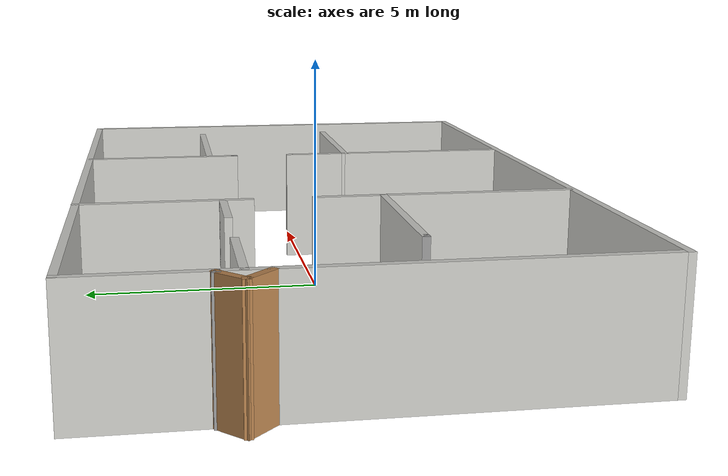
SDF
<?xml version='1.0'?>
<sdf version='1.7'>
  <model name='School'>
    <link name='Wall_17'>
      <pose>0.254991 -4.96898 0 0 -0 0</pose>
      <self_collide>0</self_collide>
      <enable_wind>0</enable_wind>
      <kinematic>0</kinematic>
      <visual name='Wall_17_Visual'>
        <pose>0 0 1.25 0 -0 0</pose>
        <geometry>
          <box>
            <size>15 0.15 2.5</size>
          </box>
        </geometry>
        <material>
          <script>
            <uri>file://media/materials/scripts/gazebo.material</uri>
            <name>Gazebo/CeilingTiled</name>
          </script>
          <ambient>1 1 1 1</ambient>
          <shader type='pixel'/>
        </material>
        <meta>
          <layer>0</layer>
        </meta>
        <transparency>0</transparency>
        <cast_shadows>1</cast_shadows>
      </visual>
      <collision name='Wall_17_Collision'>
        <laser_retro>0</laser_retro>
        <max_contacts>10</max_contacts>
        <pose>0 0 1.25 0 -0 0</pose>
        <geometry>
          <box>
            <size>15 0.15 2.5</size>
          </box>
        </geometry>
        <surface>
          <friction>
            <ode>
              <mu>1</mu>
              <mu2>1</mu2>
              <fdir1>0 0 0</fdir1>
              <slip1>0</slip1>
              <slip2>0</slip2>
            </ode>
            <torsional>
              <coefficient>1</coefficient>
              <patch_radius>0</patch_radius>
              <surface_radius>0</surface_radius>
              <use_patch_radius>1</use_patch_radius>
              <ode>
                <slip>0</slip>
              </ode>
            </torsional>
          </friction>
          <bounce>
            <restitution_coefficient>0</restitution_coefficient>
            <threshold>1e+06</threshold>
          </bounce>
          <contact>
            <collide_without_contact>0</collide_without_contact>
            <collide_without_contact_bitmask>1</collide_without_contact_bitmask>
            <collide_bitmask>1</collide_bitmask>
            <ode>
              <soft_cfm>0</soft_cfm>
              <soft_erp>0.2</soft_erp>
              <kp>1e+13</kp>
              <kd>1</kd>
              <max_vel>0.01</max_vel>
              <min_depth>0</min_depth>
            </ode>
            <bullet>
              <split_impulse>1</split_impulse>
              <split_impulse_penetration_threshold>-0.01</split_impulse_penetration_threshold>
              <soft_cfm>0</soft_cfm>
              <soft_erp>0.2</soft_erp>
              <kp>1e+13</kp>
              <kd>1</kd>
            </bullet>
          </contact>
        </surface>
      </collision>
    </link>
    <link name='Wall_19'>
      <pose>7.67999 -0.04398 0 0 -0 1.5708</pose>
      <self_collide>0</self_collide>
      <enable_wind>0</enable_wind>
      <kinematic>0</kinematic>
      <visual name='Wall_19_Visual'>
        <pose>0 0 1.25 0 -0 0</pose>
        <geometry>
          <box>
            <size>10 0.15 2.5</size>
          </box>
        </geometry>
        <material>
          <script>
            <uri>file://media/materials/scripts/gazebo.material</uri>
            <name>Gazebo/CeilingTiled</name>
          </script>
          <ambient>1 1 1 1</ambient>
          <shader type='pixel'/>
        </material>
        <meta>
          <layer>0</layer>
        </meta>
        <transparency>0</transparency>
        <cast_shadows>1</cast_shadows>
      </visual>
      <collision name='Wall_19_Collision'>
        <laser_retro>0</laser_retro>
        <max_contacts>10</max_contacts>
        <pose>0 0 1.25 0 -0 0</pose>
        <geometry>
          <box>
            <size>10 0.15 2.5</size>
          </box>
        </geometry>
        <surface>
          <friction>
            <ode>
              <mu>1</mu>
              <mu2>1</mu2>
              <fdir1>0 0 0</fdir1>
              <slip1>0</slip1>
              <slip2>0</slip2>
            </ode>
            <torsional>
              <coefficient>1</coefficient>
              <patch_radius>0</patch_radius>
              <surface_radius>0</surface_radius>
              <use_patch_radius>1</use_patch_radius>
              <ode>
                <slip>0</slip>
              </ode>
            </torsional>
          </friction>
          <bounce>
            <restitution_coefficient>0</restitution_coefficient>
            <threshold>1e+06</threshold>
          </bounce>
          <contact>
            <collide_without_contact>0</collide_without_contact>
            <collide_without_contact_bitmask>1</collide_without_contact_bitmask>
            <collide_bitmask>1</collide_bitmask>
            <ode>
              <soft_cfm>0</soft_cfm>
              <soft_erp>0.2</soft_erp>
              <kp>1e+13</kp>
              <kd>1</kd>
              <max_vel>0.01</max_vel>
              <min_depth>0</min_depth>
            </ode>
            <bullet>
              <split_impulse>1</split_impulse>
              <split_impulse_penetration_threshold>-0.01</split_impulse_penetration_threshold>
              <soft_cfm>0</soft_cfm>
              <soft_erp>0.2</soft_erp>
              <kp>1e+13</kp>
              <kd>1</kd>
            </bullet>
          </contact>
        </surface>
      </collision>
    </link>
    <link name='Wall_21'>
      <pose>2.71343 -2.97254 0 0 -0 1.56975</pose>
      <self_collide>0</self_collide>
      <enable_wind>0</enable_wind>
      <kinematic>0</kinematic>
      <visual name='Wall_21_Visual'>
        <pose>0 0 1.25 0 -0 0</pose>
        <geometry>
          <box>
            <size>3.84171 0.15 2.5</size>
          </box>
        </geometry>
        <material>
          <script>
            <uri>file://media/materials/scripts/gazebo.material</uri>
            <name>Gazebo/CeilingTiled</name>
          </script>
          <ambient>1 1 1 1</ambient>
          <shader type='pixel'/>
        </material>
        <meta>
          <layer>0</layer>
        </meta>
        <transparency>0</transparency>
        <cast_shadows>1</cast_shadows>
      </visual>
      <collision name='Wall_21_Collision'>
        <laser_retro>0</laser_retro>
        <max_contacts>10</max_contacts>
        <pose>0 0 1.25 0 -0 0</pose>
        <geometry>
          <box>
            <size>3.84171 0.15 2.5</size>
          </box>
        </geometry>
        <surface>
          <friction>
            <ode>
              <mu>1</mu>
              <mu2>1</mu2>
              <fdir1>0 0 0</fdir1>
              <slip1>0</slip1>
              <slip2>0</slip2>
            </ode>
            <torsional>
              <coefficient>1</coefficient>
              <patch_radius>0</patch_radius>
              <surface_radius>0</surface_radius>
              <use_patch_radius>1</use_patch_radius>
              <ode>
                <slip>0</slip>
              </ode>
            </torsional>
          </friction>
          <bounce>
            <restitution_coefficient>0</restitution_coefficient>
            <threshold>1e+06</threshold>
          </bounce>
          <contact>
            <collide_without_contact>0</collide_without_contact>
            <collide_without_contact_bitmask>1</collide_without_contact_bitmask>
            <collide_bitmask>1</collide_bitmask>
            <ode>
              <soft_cfm>0</soft_cfm>
              <soft_erp>0.2</soft_erp>
              <kp>1e+13</kp>
              <kd>1</kd>
              <max_vel>0.01</max_vel>
              <min_depth>0</min_depth>
            </ode>
            <bullet>
              <split_impulse>1</split_impulse>
              <split_impulse_penetration_threshold>-0.01</split_impulse_penetration_threshold>
              <soft_cfm>0</soft_cfm>
              <soft_erp>0.2</soft_erp>
              <kp>1e+13</kp>
              <kd>1</kd>
            </bullet>
          </contact>
        </surface>
      </collision>
    </link>
    <link name='Wall_25'>
      <pose>-7.17001 -0.00448 0 0 -0 1.5708</pose>
      <self_collide>0</self_collide>
      <enable_wind>0</enable_wind>
      <kinematic>0</kinematic>
      <visual name='Wall_25_Visual'>
        <pose>0 0 1.25 0 -0 0</pose>
        <geometry>
          <box>
            <size>10.0791 0.15 2.5</size>
          </box>
        </geometry>
        <material>
          <script>
            <uri>file://media/materials/scripts/gazebo.material</uri>
            <name>Gazebo/CeilingTiled</name>
          </script>
          <ambient>1 1 1 1</ambient>
          <shader type='pixel'/>
        </material>
        <meta>
          <layer>0</layer>
        </meta>
        <transparency>0</transparency>
        <cast_shadows>1</cast_shadows>
      </visual>
      <collision name='Wall_25_Collision'>
        <laser_retro>0</laser_retro>
        <max_contacts>10</max_contacts>
        <pose>0 0 1.25 0 -0 0</pose>
        <geometry>
          <box>
            <size>10.0791 0.15 2.5</size>
          </box>
        </geometry>
        <surface>
          <friction>
            <ode>
              <mu>1</mu>
              <mu2>1</mu2>
              <fdir1>0 0 0</fdir1>
              <slip1>0</slip1>
              <slip2>0</slip2>
            </ode>
            <torsional>
              <coefficient>1</coefficient>
              <patch_radius>0</patch_radius>
              <surface_radius>0</surface_radius>
              <use_patch_radius>1</use_patch_radius>
              <ode>
                <slip>0</slip>
              </ode>
            </torsional>
          </friction>
          <bounce>
            <restitution_coefficient>0</restitution_coefficient>
            <threshold>1e+06</threshold>
          </bounce>
          <contact>
            <collide_without_contact>0</collide_without_contact>
            <collide_without_contact_bitmask>1</collide_without_contact_bitmask>
            <collide_bitmask>1</collide_bitmask>
            <ode>
              <soft_cfm>0</soft_cfm>
              <soft_erp>0.2</soft_erp>
              <kp>1e+13</kp>
              <kd>1</kd>
              <max_vel>0.01</max_vel>
              <min_depth>0</min_depth>
            </ode>
            <bullet>
              <split_impulse>1</split_impulse>
              <split_impulse_penetration_threshold>-0.01</split_impulse_penetration_threshold>
              <soft_cfm>0</soft_cfm>
              <soft_erp>0.2</soft_erp>
              <kp>1e+13</kp>
              <kd>1</kd>
            </bullet>
          </contact>
        </surface>
      </collision>
    </link>
    <link name='Wall_27'>
      <pose>-2.23801 -2.96498 0 0 -0 1.5708</pose>
      <self_collide>0</self_collide>
      <enable_wind>0</enable_wind>
      <kinematic>0</kinematic>
      <visual name='Wall_27_Visual'>
        <pose>0 0 1.25 0 -0 0</pose>
        <geometry>
          <box>
            <size>4 0.15 2.5</size>
          </box>
        </geometry>
        <material>
          <script>
            <uri>file://media/materials/scripts/gazebo.material</uri>
            <name>Gazebo/CeilingTiled</name>
          </script>
          <ambient>1 1 1 1</ambient>
          <shader type='pixel'/>
        </material>
        <meta>
          <layer>0</layer>
        </meta>
        <transparency>0</transparency>
        <cast_shadows>1</cast_shadows>
      </visual>
      <collision name='Wall_27_Collision'>
        <laser_retro>0</laser_retro>
        <max_contacts>10</max_contacts>
        <pose>0 0 1.25 0 -0 0</pose>
        <geometry>
          <box>
            <size>4 0.15 2.5</size>
          </box>
        </geometry>
        <surface>
          <friction>
            <ode>
              <mu>1</mu>
              <mu2>1</mu2>
              <fdir1>0 0 0</fdir1>
              <slip1>0</slip1>
              <slip2>0</slip2>
            </ode>
            <torsional>
              <coefficient>1</coefficient>
              <patch_radius>0</patch_radius>
              <surface_radius>0</surface_radius>
              <use_patch_radius>1</use_patch_radius>
              <ode>
                <slip>0</slip>
              </ode>
            </torsional>
          </friction>
          <bounce>
            <restitution_coefficient>0</restitution_coefficient>
            <threshold>1e+06</threshold>
          </bounce>
          <contact>
            <collide_without_contact>0</collide_without_contact>
            <collide_without_contact_bitmask>1</collide_without_contact_bitmask>
            <collide_bitmask>1</collide_bitmask>
            <ode>
              <soft_cfm>0</soft_cfm>
              <soft_erp>0.2</soft_erp>
              <kp>1e+13</kp>
              <kd>1</kd>
              <max_vel>0.01</max_vel>
              <min_depth>0</min_depth>
            </ode>
            <bullet>
              <split_impulse>1</split_impulse>
              <split_impulse_penetration_threshold>-0.01</split_impulse_penetration_threshold>
              <soft_cfm>0</soft_cfm>
              <soft_erp>0.2</soft_erp>
              <kp>1e+13</kp>
              <kd>1</kd>
            </bullet>
          </contact>
        </surface>
      </collision>
    </link>
    <link name='Wall_29'>
      <pose>-3.91301 -1.03998 0 0 -0 3.14159</pose>
      <self_collide>0</self_collide>
      <enable_wind>0</enable_wind>
      <kinematic>0</kinematic>
      <visual name='Wall_29_Visual'>
        <pose>0 0 1.25 0 -0 0</pose>
        <geometry>
          <box>
            <size>3.5 0.15 2.5</size>
          </box>
        </geometry>
        <material>
          <script>
            <uri>file://media/materials/scripts/gazebo.material</uri>
            <name>Gazebo/CeilingTiled</name>
          </script>
          <ambient>1 1 1 1</ambient>
          <shader type='pixel'/>
        </material>
        <meta>
          <layer>0</layer>
        </meta>
        <transparency>0</transparency>
        <cast_shadows>1</cast_shadows>
      </visual>
      <collision name='Wall_29_Collision'>
        <laser_retro>0</laser_retro>
        <max_contacts>10</max_contacts>
        <pose>0 0 1.25 0 -0 0</pose>
        <geometry>
          <box>
            <size>3.5 0.15 2.5</size>
          </box>
        </geometry>
        <surface>
          <friction>
            <ode>
              <mu>1</mu>
              <mu2>1</mu2>
              <fdir1>0 0 0</fdir1>
              <slip1>0</slip1>
              <slip2>0</slip2>
            </ode>
            <torsional>
              <coefficient>1</coefficient>
              <patch_radius>0</patch_radius>
              <surface_radius>0</surface_radius>
              <use_patch_radius>1</use_patch_radius>
              <ode>
                <slip>0</slip>
              </ode>
            </torsional>
          </friction>
          <bounce>
            <restitution_coefficient>0</restitution_coefficient>
            <threshold>1e+06</threshold>
          </bounce>
          <contact>
            <collide_without_contact>0</collide_without_contact>
            <collide_without_contact_bitmask>1</collide_without_contact_bitmask>
            <collide_bitmask>1</collide_bitmask>
            <ode>
              <soft_cfm>0</soft_cfm>
              <soft_erp>0.2</soft_erp>
              <kp>1e+13</kp>
              <kd>1</kd>
              <max_vel>0.01</max_vel>
              <min_depth>0</min_depth>
            </ode>
            <bullet>
              <split_impulse>1</split_impulse>
              <split_impulse_penetration_threshold>-0.01</split_impulse_penetration_threshold>
              <soft_cfm>0</soft_cfm>
              <soft_erp>0.2</soft_erp>
              <kp>1e+13</kp>
              <kd>1</kd>
            </bullet>
          </contact>
        </surface>
      </collision>
    </link>
    <link name='Wall_30'>
      <pose>-5.58301 -1.03998 0 0 -0 0</pose>
      <self_collide>0</self_collide>
      <enable_wind>0</enable_wind>
      <kinematic>0</kinematic>
      <visual name='Wall_30_Visual'>
        <pose>0 0 1.25 0 -0 0</pose>
        <geometry>
          <box>
            <size>0.16 0.15 2.5</size>
          </box>
        </geometry>
        <material>
          <script>
            <uri>file://media/materials/scripts/gazebo.material</uri>
            <name>Gazebo/Grey</name>
          </script>
          <ambient>1 1 1 1</ambient>
          <shader type='pixel'/>
        </material>
        <meta>
          <layer>0</layer>
        </meta>
        <transparency>0</transparency>
        <cast_shadows>1</cast_shadows>
      </visual>
      <collision name='Wall_30_Collision'>
        <laser_retro>0</laser_retro>
        <max_contacts>10</max_contacts>
        <pose>0 0 1.25 0 -0 0</pose>
        <geometry>
          <box>
            <size>0.16 0.15 2.5</size>
          </box>
        </geometry>
        <surface>
          <friction>
            <ode>
              <mu>1</mu>
              <mu2>1</mu2>
              <fdir1>0 0 0</fdir1>
              <slip1>0</slip1>
              <slip2>0</slip2>
            </ode>
            <torsional>
              <coefficient>1</coefficient>
              <patch_radius>0</patch_radius>
              <surface_radius>0</surface_radius>
              <use_patch_radius>1</use_patch_radius>
              <ode>
                <slip>0</slip>
              </ode>
            </torsional>
          </friction>
          <bounce>
            <restitution_coefficient>0</restitution_coefficient>
            <threshold>1e+06</threshold>
          </bounce>
          <contact>
            <collide_without_contact>0</collide_without_contact>
            <collide_without_contact_bitmask>1</collide_without_contact_bitmask>
            <collide_bitmask>1</collide_bitmask>
            <ode>
              <soft_cfm>0</soft_cfm>
              <soft_erp>0.2</soft_erp>
              <kp>1e+13</kp>
              <kd>1</kd>
              <max_vel>0.01</max_vel>
              <min_depth>0</min_depth>
            </ode>
            <bullet>
              <split_impulse>1</split_impulse>
              <split_impulse_penetration_threshold>-0.01</split_impulse_penetration_threshold>
              <soft_cfm>0</soft_cfm>
              <soft_erp>0.2</soft_erp>
              <kp>1e+13</kp>
              <kd>1</kd>
            </bullet>
          </contact>
        </surface>
      </collision>
    </link>
    <link name='Wall_32'>
      <pose>4.42767 -1.12668 0 0 -0 0</pose>
      <self_collide>0</self_collide>
      <enable_wind>0</enable_wind>
      <kinematic>0</kinematic>
      <visual name='Wall_32_Visual'>
        <pose>0 0 1.25 0 -0 0</pose>
        <geometry>
          <box>
            <size>3.57462 0.15 2.5</size>
          </box>
        </geometry>
        <material>
          <script>
            <uri>file://media/materials/scripts/gazebo.material</uri>
            <name>Gazebo/CeilingTiled</name>
          </script>
          <ambient>1 1 1 1</ambient>
          <shader type='pixel'/>
        </material>
        <meta>
          <layer>0</layer>
        </meta>
        <transparency>0</transparency>
        <cast_shadows>1</cast_shadows>
      </visual>
      <collision name='Wall_32_Collision'>
        <laser_retro>0</laser_retro>
        <max_contacts>10</max_contacts>
        <pose>0 0 1.25 0 -0 0</pose>
        <geometry>
          <box>
            <size>3.57462 0.15 2.5</size>
          </box>
        </geometry>
        <surface>
          <friction>
            <ode>
              <mu>1</mu>
              <mu2>1</mu2>
              <fdir1>0 0 0</fdir1>
              <slip1>0</slip1>
              <slip2>0</slip2>
            </ode>
            <torsional>
              <coefficient>1</coefficient>
              <patch_radius>0</patch_radius>
              <surface_radius>0</surface_radius>
              <use_patch_radius>1</use_patch_radius>
              <ode>
                <slip>0</slip>
              </ode>
            </torsional>
          </friction>
          <bounce>
            <restitution_coefficient>0</restitution_coefficient>
            <threshold>1e+06</threshold>
          </bounce>
          <contact>
            <collide_without_contact>0</collide_without_contact>
            <collide_without_contact_bitmask>1</collide_without_contact_bitmask>
            <collide_bitmask>1</collide_bitmask>
            <ode>
              <soft_cfm>0</soft_cfm>
              <soft_erp>0.2</soft_erp>
              <kp>1e+13</kp>
              <kd>1</kd>
              <max_vel>0.01</max_vel>
              <min_depth>0</min_depth>
            </ode>
            <bullet>
              <split_impulse>1</split_impulse>
              <split_impulse_penetration_threshold>-0.01</split_impulse_penetration_threshold>
              <soft_cfm>0</soft_cfm>
              <soft_erp>0.2</soft_erp>
              <kp>1e+13</kp>
              <kd>1</kd>
            </bullet>
          </contact>
        </surface>
      </collision>
    </link>
    <link name='Wall_36'>
      <pose>0.254991 4.95997 0 0 0 -7e-06</pose>
      <self_collide>0</self_collide>
      <enable_wind>0</enable_wind>
      <kinematic>0</kinematic>
      <visual name='Wall_36_Visual'>
        <pose>0 0 1.25 0 -0 0</pose>
        <geometry>
          <box>
            <size>15 0.15 2.5</size>
          </box>
        </geometry>
        <material>
          <script>
            <uri>file://media/materials/scripts/gazebo.material</uri>
            <name>Gazebo/CeilingTiled</name>
          </script>
          <ambient>1 1 1 1</ambient>
          <shader type='pixel'/>
        </material>
        <meta>
          <layer>0</layer>
        </meta>
        <transparency>0</transparency>
        <cast_shadows>1</cast_shadows>
      </visual>
      <collision name='Wall_36_Collision'>
        <laser_retro>0</laser_retro>
        <max_contacts>10</max_contacts>
        <pose>0 0 1.25 0 -0 0</pose>
        <geometry>
          <box>
            <size>15 0.15 2.5</size>
          </box>
        </geometry>
        <surface>
          <friction>
            <ode>
              <mu>1</mu>
              <mu2>1</mu2>
              <fdir1>0 0 0</fdir1>
              <slip1>0</slip1>
              <slip2>0</slip2>
            </ode>
            <torsional>
              <coefficient>1</coefficient>
              <patch_radius>0</patch_radius>
              <surface_radius>0</surface_radius>
              <use_patch_radius>1</use_patch_radius>
              <ode>
                <slip>0</slip>
              </ode>
            </torsional>
          </friction>
          <bounce>
            <restitution_coefficient>0</restitution_coefficient>
            <threshold>1e+06</threshold>
          </bounce>
          <contact>
            <collide_without_contact>0</collide_without_contact>
            <collide_without_contact_bitmask>1</collide_without_contact_bitmask>
            <collide_bitmask>1</collide_bitmask>
            <ode>
              <soft_cfm>0</soft_cfm>
              <soft_erp>0.2</soft_erp>
              <kp>1e+13</kp>
              <kd>1</kd>
              <max_vel>0.01</max_vel>
              <min_depth>0</min_depth>
            </ode>
            <bullet>
              <split_impulse>1</split_impulse>
              <split_impulse_penetration_threshold>-0.01</split_impulse_penetration_threshold>
              <soft_cfm>0</soft_cfm>
              <soft_erp>0.2</soft_erp>
              <kp>1e+13</kp>
              <kd>1</kd>
            </bullet>
          </contact>
        </surface>
      </collision>
    </link>
    <link name='Wall_39'>
      <pose>-2.23801 -0.36498 0 0 -0 1.5708</pose>
      <self_collide>0</self_collide>
      <enable_wind>0</enable_wind>
      <kinematic>0</kinematic>
      <visual name='Wall_39_Visual'>
        <pose>0 0 1.25 0 -0 0</pose>
        <geometry>
          <box>
            <size>1.5 0.15 2.5</size>
          </box>
        </geometry>
        <material>
          <script>
            <uri>file://media/materials/scripts/gazebo.material</uri>
            <name>Gazebo/CeilingTiled</name>
          </script>
          <ambient>1 1 1 1</ambient>
          <shader type='pixel'/>
        </material>
        <meta>
          <layer>0</layer>
        </meta>
        <transparency>0</transparency>
        <cast_shadows>1</cast_shadows>
      </visual>
      <collision name='Wall_39_Collision'>
        <laser_retro>0</laser_retro>
        <max_contacts>10</max_contacts>
        <pose>0 0 1.25 0 -0 0</pose>
        <geometry>
          <box>
            <size>1.5 0.15 2.5</size>
          </box>
        </geometry>
        <surface>
          <friction>
            <ode>
              <mu>1</mu>
              <mu2>1</mu2>
              <fdir1>0 0 0</fdir1>
              <slip1>0</slip1>
              <slip2>0</slip2>
            </ode>
            <torsional>
              <coefficient>1</coefficient>
              <patch_radius>0</patch_radius>
              <surface_radius>0</surface_radius>
              <use_patch_radius>1</use_patch_radius>
              <ode>
                <slip>0</slip>
              </ode>
            </torsional>
          </friction>
          <bounce>
            <restitution_coefficient>0</restitution_coefficient>
            <threshold>1e+06</threshold>
          </bounce>
          <contact>
            <collide_without_contact>0</collide_without_contact>
            <collide_without_contact_bitmask>1</collide_without_contact_bitmask>
            <collide_bitmask>1</collide_bitmask>
            <ode>
              <soft_cfm>0</soft_cfm>
              <soft_erp>0.2</soft_erp>
              <kp>1e+13</kp>
              <kd>1</kd>
              <max_vel>0.01</max_vel>
              <min_depth>0</min_depth>
            </ode>
            <bullet>
              <split_impulse>1</split_impulse>
              <split_impulse_penetration_threshold>-0.01</split_impulse_penetration_threshold>
              <soft_cfm>0</soft_cfm>
              <soft_erp>0.2</soft_erp>
              <kp>1e+13</kp>
              <kd>1</kd>
            </bullet>
          </contact>
        </surface>
      </collision>
    </link>
    <link name='Wall_41'>
      <pose>-2.23801 3.29402 0 0 0 -1.5708</pose>
      <self_collide>0</self_collide>
      <enable_wind>0</enable_wind>
      <kinematic>0</kinematic>
      <visual name='Wall_41_Visual'>
        <pose>0 0 1.25 0 -0 0</pose>
        <geometry>
          <box>
            <size>3.5 0.15 2.5</size>
          </box>
        </geometry>
        <material>
          <script>
            <uri>file://media/materials/scripts/gazebo.material</uri>
            <name>Gazebo/CeilingTiled</name>
          </script>
          <ambient>1 1 1 1</ambient>
          <shader type='pixel'/>
        </material>
        <meta>
          <layer>0</layer>
        </meta>
        <transparency>0</transparency>
        <cast_shadows>1</cast_shadows>
      </visual>
      <collision name='Wall_41_Collision'>
        <laser_retro>0</laser_retro>
        <max_contacts>10</max_contacts>
        <pose>0 0 1.25 0 -0 0</pose>
        <geometry>
          <box>
            <size>3.5 0.15 2.5</size>
          </box>
        </geometry>
        <surface>
          <friction>
            <ode>
              <mu>1</mu>
              <mu2>1</mu2>
              <fdir1>0 0 0</fdir1>
              <slip1>0</slip1>
              <slip2>0</slip2>
            </ode>
            <torsional>
              <coefficient>1</coefficient>
              <patch_radius>0</patch_radius>
              <surface_radius>0</surface_radius>
              <use_patch_radius>1</use_patch_radius>
              <ode>
                <slip>0</slip>
              </ode>
            </torsional>
          </friction>
          <bounce>
            <restitution_coefficient>0</restitution_coefficient>
            <threshold>1e+06</threshold>
          </bounce>
          <contact>
            <collide_without_contact>0</collide_without_contact>
            <collide_without_contact_bitmask>1</collide_without_contact_bitmask>
            <collide_bitmask>1</collide_bitmask>
            <ode>
              <soft_cfm>0</soft_cfm>
              <soft_erp>0.2</soft_erp>
              <kp>1e+13</kp>
              <kd>1</kd>
              <max_vel>0.01</max_vel>
              <min_depth>0</min_depth>
            </ode>
            <bullet>
              <split_impulse>1</split_impulse>
              <split_impulse_penetration_threshold>-0.01</split_impulse_penetration_threshold>
              <soft_cfm>0</soft_cfm>
              <soft_erp>0.2</soft_erp>
              <kp>1e+13</kp>
              <kd>1</kd>
            </bullet>
          </contact>
        </surface>
      </collision>
    </link>
    <link name='Wall_46'>
      <pose>2.73299 3.23402 0 0 0 -1.5708</pose>
      <self_collide>0</self_collide>
      <enable_wind>0</enable_wind>
      <kinematic>0</kinematic>
      <visual name='Wall_46_Visual'>
        <pose>0 0 1.25 0 -0 0</pose>
        <geometry>
          <box>
            <size>3.5 0.15 2.5</size>
          </box>
        </geometry>
        <material>
          <script>
            <uri>file://media/materials/scripts/gazebo.material</uri>
            <name>Gazebo/CeilingTiled</name>
          </script>
          <ambient>1 1 1 1</ambient>
          <shader type='pixel'/>
        </material>
        <meta>
          <layer>0</layer>
        </meta>
        <transparency>0</transparency>
        <cast_shadows>1</cast_shadows>
      </visual>
      <collision name='Wall_46_Collision'>
        <laser_retro>0</laser_retro>
        <max_contacts>10</max_contacts>
        <pose>0 0 1.25 0 -0 0</pose>
        <geometry>
          <box>
            <size>3.5 0.15 2.5</size>
          </box>
        </geometry>
        <surface>
          <friction>
            <ode>
              <mu>1</mu>
              <mu2>1</mu2>
              <fdir1>0 0 0</fdir1>
              <slip1>0</slip1>
              <slip2>0</slip2>
            </ode>
            <torsional>
              <coefficient>1</coefficient>
              <patch_radius>0</patch_radius>
              <surface_radius>0</surface_radius>
              <use_patch_radius>1</use_patch_radius>
              <ode>
                <slip>0</slip>
              </ode>
            </torsional>
          </friction>
          <bounce>
            <restitution_coefficient>0</restitution_coefficient>
            <threshold>1e+06</threshold>
          </bounce>
          <contact>
            <collide_without_contact>0</collide_without_contact>
            <collide_without_contact_bitmask>1</collide_without_contact_bitmask>
            <collide_bitmask>1</collide_bitmask>
            <ode>
              <soft_cfm>0</soft_cfm>
              <soft_erp>0.2</soft_erp>
              <kp>1e+13</kp>
              <kd>1</kd>
              <max_vel>0.01</max_vel>
              <min_depth>0</min_depth>
            </ode>
            <bullet>
              <split_impulse>1</split_impulse>
              <split_impulse_penetration_threshold>-0.01</split_impulse_penetration_threshold>
              <soft_cfm>0</soft_cfm>
              <soft_erp>0.2</soft_erp>
              <kp>1e+13</kp>
              <kd>1</kd>
            </bullet>
          </contact>
        </surface>
      </collision>
    </link>
    <link name='Wall_47'>
      <pose>2.73299 1.55902 0 0 -0 0</pose>
      <self_collide>0</self_collide>
      <enable_wind>0</enable_wind>
      <kinematic>0</kinematic>
      <visual name='Wall_47_Visual'>
        <pose>0 0 1.25 0 -0 0</pose>
        <geometry>
          <box>
            <size>0.15 0.15 2.5</size>
          </box>
        </geometry>
        <material>
          <script>
            <uri>file://media/materials/scripts/gazebo.material</uri>
            <name>Gazebo/Grey</name>
          </script>
          <ambient>1 1 1 1</ambient>
          <shader type='pixel'/>
        </material>
        <meta>
          <layer>0</layer>
        </meta>
        <transparency>0</transparency>
        <cast_shadows>1</cast_shadows>
      </visual>
      <collision name='Wall_47_Collision'>
        <laser_retro>0</laser_retro>
        <max_contacts>10</max_contacts>
        <pose>0 0 1.25 0 -0 0</pose>
        <geometry>
          <box>
            <size>0.15 0.15 2.5</size>
          </box>
        </geometry>
        <surface>
          <friction>
            <ode>
              <mu>1</mu>
              <mu2>1</mu2>
              <fdir1>0 0 0</fdir1>
              <slip1>0</slip1>
              <slip2>0</slip2>
            </ode>
            <torsional>
              <coefficient>1</coefficient>
              <patch_radius>0</patch_radius>
              <surface_radius>0</surface_radius>
              <use_patch_radius>1</use_patch_radius>
              <ode>
                <slip>0</slip>
              </ode>
            </torsional>
          </friction>
          <bounce>
            <restitution_coefficient>0</restitution_coefficient>
            <threshold>1e+06</threshold>
          </bounce>
          <contact>
            <collide_without_contact>0</collide_without_contact>
            <collide_without_contact_bitmask>1</collide_without_contact_bitmask>
            <collide_bitmask>1</collide_bitmask>
            <ode>
              <soft_cfm>0</soft_cfm>
              <soft_erp>0.2</soft_erp>
              <kp>1e+13</kp>
              <kd>1</kd>
              <max_vel>0.01</max_vel>
              <min_depth>0</min_depth>
            </ode>
            <bullet>
              <split_impulse>1</split_impulse>
              <split_impulse_penetration_threshold>-0.01</split_impulse_penetration_threshold>
              <soft_cfm>0</soft_cfm>
              <soft_erp>0.2</soft_erp>
              <kp>1e+13</kp>
              <kd>1</kd>
            </bullet>
          </contact>
        </surface>
      </collision>
    </link>
    <link name='Wall_49'>
      <pose>2.71536 -0.45168 0 0 -0 1.5708</pose>
      <self_collide>0</self_collide>
      <enable_wind>0</enable_wind>
      <kinematic>0</kinematic>
      <visual name='Wall_49_Visual'>
        <pose>0 0 1.25 0 -0 0</pose>
        <geometry>
          <box>
            <size>1.5 0.15 2.5</size>
          </box>
        </geometry>
        <material>
          <script>
            <uri>file://media/materials/scripts/gazebo.material</uri>
            <name>Gazebo/CeilingTiled</name>
          </script>
          <ambient>1 1 1 1</ambient>
          <shader type='pixel'/>
        </material>
        <meta>
          <layer>0</layer>
        </meta>
        <transparency>0</transparency>
        <cast_shadows>1</cast_shadows>
      </visual>
      <collision name='Wall_49_Collision'>
        <laser_retro>0</laser_retro>
        <max_contacts>10</max_contacts>
        <pose>0 0 1.25 0 -0 0</pose>
        <geometry>
          <box>
            <size>1.5 0.15 2.5</size>
          </box>
        </geometry>
        <surface>
          <friction>
            <ode>
              <mu>1</mu>
              <mu2>1</mu2>
              <fdir1>0 0 0</fdir1>
              <slip1>0</slip1>
              <slip2>0</slip2>
            </ode>
            <torsional>
              <coefficient>1</coefficient>
              <patch_radius>0</patch_radius>
              <surface_radius>0</surface_radius>
              <use_patch_radius>1</use_patch_radius>
              <ode>
                <slip>0</slip>
              </ode>
            </torsional>
          </friction>
          <bounce>
            <restitution_coefficient>0</restitution_coefficient>
            <threshold>1e+06</threshold>
          </bounce>
          <contact>
            <collide_without_contact>0</collide_without_contact>
            <collide_without_contact_bitmask>1</collide_without_contact_bitmask>
            <collide_bitmask>1</collide_bitmask>
            <ode>
              <soft_cfm>0</soft_cfm>
              <soft_erp>0.2</soft_erp>
              <kp>1e+13</kp>
              <kd>1</kd>
              <max_vel>0.01</max_vel>
              <min_depth>0</min_depth>
            </ode>
            <bullet>
              <split_impulse>1</split_impulse>
              <split_impulse_penetration_threshold>-0.01</split_impulse_penetration_threshold>
              <soft_cfm>0</soft_cfm>
              <soft_erp>0.2</soft_erp>
              <kp>1e+13</kp>
              <kd>1</kd>
            </bullet>
          </contact>
        </surface>
      </collision>
    </link>
    <link name='Wall_50'>
      <pose>2.71536 0.22332 0 0 -0 0</pose>
      <self_collide>0</self_collide>
      <enable_wind>0</enable_wind>
      <kinematic>0</kinematic>
      <visual name='Wall_50_Visual'>
        <pose>0 0 1.25 0 -0 0</pose>
        <geometry>
          <box>
            <size>0.15 0.15 2.5</size>
          </box>
        </geometry>
        <material>
          <script>
            <uri>file://media/materials/scripts/gazebo.material</uri>
            <name>Gazebo/CeilingTiled</name>
          </script>
          <ambient>1 1 1 1</ambient>
          <shader type='pixel'/>
        </material>
        <meta>
          <layer>0</layer>
        </meta>
        <transparency>0</transparency>
        <cast_shadows>1</cast_shadows>
      </visual>
      <collision name='Wall_50_Collision'>
        <laser_retro>0</laser_retro>
        <max_contacts>10</max_contacts>
        <pose>0 0 1.25 0 -0 0</pose>
        <geometry>
          <box>
            <size>0.15 0.15 2.5</size>
          </box>
        </geometry>
        <surface>
          <friction>
            <ode>
              <mu>1</mu>
              <mu2>1</mu2>
              <fdir1>0 0 0</fdir1>
              <slip1>0</slip1>
              <slip2>0</slip2>
            </ode>
            <torsional>
              <coefficient>1</coefficient>
              <patch_radius>0</patch_radius>
              <surface_radius>0</surface_radius>
              <use_patch_radius>1</use_patch_radius>
              <ode>
                <slip>0</slip>
              </ode>
            </torsional>
          </friction>
          <bounce>
            <restitution_coefficient>0</restitution_coefficient>
            <threshold>1e+06</threshold>
          </bounce>
          <contact>
            <collide_without_contact>0</collide_without_contact>
            <collide_without_contact_bitmask>1</collide_without_contact_bitmask>
            <collide_bitmask>1</collide_bitmask>
            <ode>
              <soft_cfm>0</soft_cfm>
              <soft_erp>0.2</soft_erp>
              <kp>1e+13</kp>
              <kd>1</kd>
              <max_vel>0.01</max_vel>
              <min_depth>0</min_depth>
            </ode>
            <bullet>
              <split_impulse>1</split_impulse>
              <split_impulse_penetration_threshold>-0.01</split_impulse_penetration_threshold>
              <soft_cfm>0</soft_cfm>
              <soft_erp>0.2</soft_erp>
              <kp>1e+13</kp>
              <kd>1</kd>
            </bullet>
          </contact>
        </surface>
      </collision>
    </link>
    <link name='Wall_53'>
      <pose>-7.64893 2.15204 0 0 -0 0</pose>
      <self_collide>0</self_collide>
      <enable_wind>0</enable_wind>
      <kinematic>0</kinematic>
      <visual name='Wall_53_Visual'>
        <pose>0 0 1.25 0 -0 0</pose>
        <geometry>
          <box>
            <size>0.15 0.15 2.5</size>
          </box>
        </geometry>
        <material>
          <script>
            <uri>file://media/materials/scripts/gazebo.material</uri>
            <name>Gazebo/Wood</name>
          </script>
          <ambient>1 1 1 1</ambient>
          <shader type='pixel'/>
        </material>
        <meta>
          <layer>0</layer>
        </meta>
        <transparency>0</transparency>
        <cast_shadows>1</cast_shadows>
      </visual>
      <collision name='Wall_53_Collision'>
        <laser_retro>0</laser_retro>
        <max_contacts>10</max_contacts>
        <pose>0 0 1.25 0 -0 0</pose>
        <geometry>
          <box>
            <size>0.15 0.15 2.5</size>
          </box>
        </geometry>
        <surface>
          <friction>
            <ode>
              <mu>1</mu>
              <mu2>1</mu2>
              <fdir1>0 0 0</fdir1>
              <slip1>0</slip1>
              <slip2>0</slip2>
            </ode>
            <torsional>
              <coefficient>1</coefficient>
              <patch_radius>0</patch_radius>
              <surface_radius>0</surface_radius>
              <use_patch_radius>1</use_patch_radius>
              <ode>
                <slip>0</slip>
              </ode>
            </torsional>
          </friction>
          <bounce>
            <restitution_coefficient>0</restitution_coefficient>
            <threshold>1e+06</threshold>
          </bounce>
          <contact>
            <collide_without_contact>0</collide_without_contact>
            <collide_without_contact_bitmask>1</collide_without_contact_bitmask>
            <collide_bitmask>1</collide_bitmask>
            <ode>
              <soft_cfm>0</soft_cfm>
              <soft_erp>0.2</soft_erp>
              <kp>1e+13</kp>
              <kd>1</kd>
              <max_vel>0.01</max_vel>
              <min_depth>0</min_depth>
            </ode>
            <bullet>
              <split_impulse>1</split_impulse>
              <split_impulse_penetration_threshold>-0.01</split_impulse_penetration_threshold>
              <soft_cfm>0</soft_cfm>
              <soft_erp>0.2</soft_erp>
              <kp>1e+13</kp>
              <kd>1</kd>
            </bullet>
          </contact>
        </surface>
      </collision>
    </link>
    <link name='Wall_55'>
      <pose>-6.21671 2.15116 0 0 -0 0</pose>
      <self_collide>0</self_collide>
      <enable_wind>0</enable_wind>
      <kinematic>0</kinematic>
      <visual name='Wall_55_Visual'>
        <pose>0 0 1.25 0 -0 0</pose>
        <geometry>
          <box>
            <size>2 0.15 2.5</size>
          </box>
        </geometry>
        <material>
          <script>
            <uri>file://media/materials/scripts/gazebo.material</uri>
            <name>Gazebo/CeilingTiled</name>
          </script>
          <ambient>1 1 1 1</ambient>
          <shader type='pixel'/>
        </material>
        <meta>
          <layer>0</layer>
        </meta>
        <transparency>0</transparency>
        <cast_shadows>1</cast_shadows>
      </visual>
      <collision name='Wall_55_Collision'>
        <laser_retro>0</laser_retro>
        <max_contacts>10</max_contacts>
        <pose>0 0 1.25 0 -0 0</pose>
        <geometry>
          <box>
            <size>2 0.15 2.5</size>
          </box>
        </geometry>
        <surface>
          <friction>
            <ode>
              <mu>1</mu>
              <mu2>1</mu2>
              <fdir1>0 0 0</fdir1>
              <slip1>0</slip1>
              <slip2>0</slip2>
            </ode>
            <torsional>
              <coefficient>1</coefficient>
              <patch_radius>0</patch_radius>
              <surface_radius>0</surface_radius>
              <use_patch_radius>1</use_patch_radius>
              <ode>
                <slip>0</slip>
              </ode>
            </torsional>
          </friction>
          <bounce>
            <restitution_coefficient>0</restitution_coefficient>
            <threshold>1e+06</threshold>
          </bounce>
          <contact>
            <collide_without_contact>0</collide_without_contact>
            <collide_without_contact_bitmask>1</collide_without_contact_bitmask>
            <collide_bitmask>1</collide_bitmask>
            <ode>
              <soft_cfm>0</soft_cfm>
              <soft_erp>0.2</soft_erp>
              <kp>1e+13</kp>
              <kd>1</kd>
              <max_vel>0.01</max_vel>
              <min_depth>0</min_depth>
            </ode>
            <bullet>
              <split_impulse>1</split_impulse>
              <split_impulse_penetration_threshold>-0.01</split_impulse_penetration_threshold>
              <soft_cfm>0</soft_cfm>
              <soft_erp>0.2</soft_erp>
              <kp>1e+13</kp>
              <kd>1</kd>
            </bullet>
          </contact>
        </surface>
      </collision>
    </link>
    <link name='Wall_57'>
      <pose>-3.02201 2.15102 0 0 -0 0</pose>
      <self_collide>0</self_collide>
      <enable_wind>0</enable_wind>
      <kinematic>0</kinematic>
      <visual name='Wall_57_Visual'>
        <pose>0 0 1.25 0 -0 0</pose>
        <geometry>
          <box>
            <size>1.5 0.15 2.5</size>
          </box>
        </geometry>
        <material>
          <script>
            <uri>file://media/materials/scripts/gazebo.material</uri>
            <name>Gazebo/CeilingTiled</name>
          </script>
          <ambient>1 1 1 1</ambient>
          <shader type='pixel'/>
        </material>
        <meta>
          <layer>0</layer>
        </meta>
        <transparency>0</transparency>
        <cast_shadows>1</cast_shadows>
      </visual>
      <collision name='Wall_57_Collision'>
        <laser_retro>0</laser_retro>
        <max_contacts>10</max_contacts>
        <pose>0 0 1.25 0 -0 0</pose>
        <geometry>
          <box>
            <size>1.5 0.15 2.5</size>
          </box>
        </geometry>
        <surface>
          <friction>
            <ode>
              <mu>1</mu>
              <mu2>1</mu2>
              <fdir1>0 0 0</fdir1>
              <slip1>0</slip1>
              <slip2>0</slip2>
            </ode>
            <torsional>
              <coefficient>1</coefficient>
              <patch_radius>0</patch_radius>
              <surface_radius>0</surface_radius>
              <use_patch_radius>1</use_patch_radius>
              <ode>
                <slip>0</slip>
              </ode>
            </torsional>
          </friction>
          <bounce>
            <restitution_coefficient>0</restitution_coefficient>
            <threshold>1e+06</threshold>
          </bounce>
          <contact>
            <collide_without_contact>0</collide_without_contact>
            <collide_without_contact_bitmask>1</collide_without_contact_bitmask>
            <collide_bitmask>1</collide_bitmask>
            <ode>
              <soft_cfm>0</soft_cfm>
              <soft_erp>0.2</soft_erp>
              <kp>1e+13</kp>
              <kd>1</kd>
              <max_vel>0.01</max_vel>
              <min_depth>0</min_depth>
            </ode>
            <bullet>
              <split_impulse>1</split_impulse>
              <split_impulse_penetration_threshold>-0.01</split_impulse_penetration_threshold>
              <soft_cfm>0</soft_cfm>
              <soft_erp>0.2</soft_erp>
              <kp>1e+13</kp>
              <kd>1</kd>
            </bullet>
          </contact>
        </surface>
      </collision>
    </link>
    <link name='Wall_58'>
      <pose>-2.34701 2.15102 0 0 -0 0</pose>
      <self_collide>0</self_collide>
      <enable_wind>0</enable_wind>
      <kinematic>0</kinematic>
      <visual name='Wall_58_Visual'>
        <pose>0 0 1.25 0 -0 0</pose>
        <geometry>
          <box>
            <size>0.15 0.15 2.5</size>
          </box>
        </geometry>
        <material>
          <script>
            <uri>file://media/materials/scripts/gazebo.material</uri>
            <name>Gazebo/Grey</name>
          </script>
          <ambient>1 1 1 1</ambient>
          <shader type='pixel'/>
        </material>
        <meta>
          <layer>0</layer>
        </meta>
        <transparency>0</transparency>
        <cast_shadows>1</cast_shadows>
      </visual>
      <collision name='Wall_58_Collision'>
        <laser_retro>0</laser_retro>
        <max_contacts>10</max_contacts>
        <pose>0 0 1.25 0 -0 0</pose>
        <geometry>
          <box>
            <size>0.15 0.15 2.5</size>
          </box>
        </geometry>
        <surface>
          <friction>
            <ode>
              <mu>1</mu>
              <mu2>1</mu2>
              <fdir1>0 0 0</fdir1>
              <slip1>0</slip1>
              <slip2>0</slip2>
            </ode>
            <torsional>
              <coefficient>1</coefficient>
              <patch_radius>0</patch_radius>
              <surface_radius>0</surface_radius>
              <use_patch_radius>1</use_patch_radius>
              <ode>
                <slip>0</slip>
              </ode>
            </torsional>
          </friction>
          <bounce>
            <restitution_coefficient>0</restitution_coefficient>
            <threshold>1e+06</threshold>
          </bounce>
          <contact>
            <collide_without_contact>0</collide_without_contact>
            <collide_without_contact_bitmask>1</collide_without_contact_bitmask>
            <collide_bitmask>1</collide_bitmask>
            <ode>
              <soft_cfm>0</soft_cfm>
              <soft_erp>0.2</soft_erp>
              <kp>1e+13</kp>
              <kd>1</kd>
              <max_vel>0.01</max_vel>
              <min_depth>0</min_depth>
            </ode>
            <bullet>
              <split_impulse>1</split_impulse>
              <split_impulse_penetration_threshold>-0.01</split_impulse_penetration_threshold>
              <soft_cfm>0</soft_cfm>
              <soft_erp>0.2</soft_erp>
              <kp>1e+13</kp>
              <kd>1</kd>
            </bullet>
          </contact>
        </surface>
      </collision>
    </link>
    <link name='Wall_61'>
      <pose>4.51973 2.15102 0 0 -0 0</pose>
      <self_collide>0</self_collide>
      <enable_wind>0</enable_wind>
      <kinematic>0</kinematic>
      <visual name='Wall_61_Visual'>
        <pose>0 0 1.25 0 -0 0</pose>
        <geometry>
          <box>
            <size>3.5 0.15 2.5</size>
          </box>
        </geometry>
        <material>
          <script>
            <uri>file://media/materials/scripts/gazebo.material</uri>
            <name>Gazebo/CeilingTiled</name>
          </script>
          <ambient>1 1 1 1</ambient>
          <shader type='pixel'/>
        </material>
        <meta>
          <layer>0</layer>
        </meta>
        <transparency>0</transparency>
        <cast_shadows>1</cast_shadows>
      </visual>
      <collision name='Wall_61_Collision'>
        <laser_retro>0</laser_retro>
        <max_contacts>10</max_contacts>
        <pose>0 0 1.25 0 -0 0</pose>
        <geometry>
          <box>
            <size>3.5 0.15 2.5</size>
          </box>
        </geometry>
        <surface>
          <friction>
            <ode>
              <mu>1</mu>
              <mu2>1</mu2>
              <fdir1>0 0 0</fdir1>
              <slip1>0</slip1>
              <slip2>0</slip2>
            </ode>
            <torsional>
              <coefficient>1</coefficient>
              <patch_radius>0</patch_radius>
              <surface_radius>0</surface_radius>
              <use_patch_radius>1</use_patch_radius>
              <ode>
                <slip>0</slip>
              </ode>
            </torsional>
          </friction>
          <bounce>
            <restitution_coefficient>0</restitution_coefficient>
            <threshold>1e+06</threshold>
          </bounce>
          <contact>
            <collide_without_contact>0</collide_without_contact>
            <collide_without_contact_bitmask>1</collide_without_contact_bitmask>
            <collide_bitmask>1</collide_bitmask>
            <ode>
              <soft_cfm>0</soft_cfm>
              <soft_erp>0.2</soft_erp>
              <kp>1e+13</kp>
              <kd>1</kd>
              <max_vel>0.01</max_vel>
              <min_depth>0</min_depth>
            </ode>
            <bullet>
              <split_impulse>1</split_impulse>
              <split_impulse_penetration_threshold>-0.01</split_impulse_penetration_threshold>
              <soft_cfm>0</soft_cfm>
              <soft_erp>0.2</soft_erp>
              <kp>1e+13</kp>
              <kd>1</kd>
            </bullet>
          </contact>
        </surface>
      </collision>
    </link>
    <link name='Wall_87'>
      <pose>-7.43679 2.36417 0 0 -0 0.785398</pose>
      <self_collide>0</self_collide>
      <enable_wind>0</enable_wind>
      <kinematic>0</kinematic>
      <visual name='Wall_87_Visual'>
        <pose>0 0 1.25 0 -0 0</pose>
        <geometry>
          <box>
            <size>0.75 0.15 2.5</size>
          </box>
        </geometry>
        <material>
          <script>
            <uri>file://media/materials/scripts/gazebo.material</uri>
            <name>Gazebo/Wood</name>
          </script>
          <ambient>1 1 1 1</ambient>
          <shader type='pixel'/>
        </material>
        <meta>
          <layer>0</layer>
        </meta>
        <transparency>0</transparency>
        <cast_shadows>1</cast_shadows>
      </visual>
      <collision name='Wall_87_Collision'>
        <laser_retro>0</laser_retro>
        <max_contacts>10</max_contacts>
        <pose>0 0 1.25 0 -0 0</pose>
        <geometry>
          <box>
            <size>0.75 0.15 2.5</size>
          </box>
        </geometry>
        <surface>
          <friction>
            <ode>
              <mu>1</mu>
              <mu2>1</mu2>
              <fdir1>0 0 0</fdir1>
              <slip1>0</slip1>
              <slip2>0</slip2>
            </ode>
            <torsional>
              <coefficient>1</coefficient>
              <patch_radius>0</patch_radius>
              <surface_radius>0</surface_radius>
              <use_patch_radius>1</use_patch_radius>
              <ode>
                <slip>0</slip>
              </ode>
            </torsional>
          </friction>
          <bounce>
            <restitution_coefficient>0</restitution_coefficient>
            <threshold>1e+06</threshold>
          </bounce>
          <contact>
            <collide_without_contact>0</collide_without_contact>
            <collide_without_contact_bitmask>1</collide_without_contact_bitmask>
            <collide_bitmask>1</collide_bitmask>
            <ode>
              <soft_cfm>0</soft_cfm>
              <soft_erp>0.2</soft_erp>
              <kp>1e+13</kp>
              <kd>1</kd>
              <max_vel>0.01</max_vel>
              <min_depth>0</min_depth>
            </ode>
            <bullet>
              <split_impulse>1</split_impulse>
              <split_impulse_penetration_threshold>-0.01</split_impulse_penetration_threshold>
              <soft_cfm>0</soft_cfm>
              <soft_erp>0.2</soft_erp>
              <kp>1e+13</kp>
              <kd>1</kd>
            </bullet>
          </contact>
        </surface>
      </collision>
    </link>
    <link name='Wall_88'>
      <pose>-7.21966 2.5763 0 0 -0 0</pose>
      <self_collide>0</self_collide>
      <enable_wind>0</enable_wind>
      <kinematic>0</kinematic>
      <visual name='Wall_88_Visual'>
        <pose>0 0 1.25 0 -0 0</pose>
        <geometry>
          <box>
            <size>0.16 0.15 2.5</size>
          </box>
        </geometry>
        <material>
          <script>
            <uri>file://media/materials/scripts/gazebo.material</uri>
            <name>Gazebo/Grey</name>
          </script>
          <ambient>1 1 1 1</ambient>
          <shader type='pixel'/>
        </material>
        <meta>
          <layer>0</layer>
        </meta>
        <transparency>0</transparency>
        <cast_shadows>1</cast_shadows>
      </visual>
      <collision name='Wall_88_Collision'>
        <laser_retro>0</laser_retro>
        <max_contacts>10</max_contacts>
        <pose>0 0 1.25 0 -0 0</pose>
        <geometry>
          <box>
            <size>0.16 0.15 2.5</size>
          </box>
        </geometry>
        <surface>
          <friction>
            <ode>
              <mu>1</mu>
              <mu2>1</mu2>
              <fdir1>0 0 0</fdir1>
              <slip1>0</slip1>
              <slip2>0</slip2>
            </ode>
            <torsional>
              <coefficient>1</coefficient>
              <patch_radius>0</patch_radius>
              <surface_radius>0</surface_radius>
              <use_patch_radius>1</use_patch_radius>
              <ode>
                <slip>0</slip>
              </ode>
            </torsional>
          </friction>
          <bounce>
            <restitution_coefficient>0</restitution_coefficient>
            <threshold>1e+06</threshold>
          </bounce>
          <contact>
            <collide_without_contact>0</collide_without_contact>
            <collide_without_contact_bitmask>1</collide_without_contact_bitmask>
            <collide_bitmask>1</collide_bitmask>
            <ode>
              <soft_cfm>0</soft_cfm>
              <soft_erp>0.2</soft_erp>
              <kp>1e+13</kp>
              <kd>1</kd>
              <max_vel>0.01</max_vel>
              <min_depth>0</min_depth>
            </ode>
            <bullet>
              <split_impulse>1</split_impulse>
              <split_impulse_penetration_threshold>-0.01</split_impulse_penetration_threshold>
              <soft_cfm>0</soft_cfm>
              <soft_erp>0.2</soft_erp>
              <kp>1e+13</kp>
              <kd>1</kd>
            </bullet>
          </contact>
        </surface>
      </collision>
    </link>
    <link name='Wall_90'>
      <pose>-7.43679 1.9399 0 0 0 -0.785398</pose>
      <self_collide>0</self_collide>
      <enable_wind>0</enable_wind>
      <kinematic>0</kinematic>
      <visual name='Wall_90_Visual'>
        <pose>0 0 1.25 0 -0 0</pose>
        <geometry>
          <box>
            <size>0.75 0.15 2.5</size>
          </box>
        </geometry>
        <material>
          <script>
            <uri>file://media/materials/scripts/gazebo.material</uri>
            <name>Gazebo/Wood</name>
          </script>
          <ambient>1 1 1 1</ambient>
          <shader type='pixel'/>
        </material>
        <meta>
          <layer>0</layer>
        </meta>
        <transparency>0</transparency>
        <cast_shadows>1</cast_shadows>
      </visual>
      <collision name='Wall_90_Collision'>
        <laser_retro>0</laser_retro>
        <max_contacts>10</max_contacts>
        <pose>0 0 1.25 0 -0 0</pose>
        <geometry>
          <box>
            <size>0.75 0.15 2.5</size>
          </box>
        </geometry>
        <surface>
          <friction>
            <ode>
              <mu>1</mu>
              <mu2>1</mu2>
              <fdir1>0 0 0</fdir1>
              <slip1>0</slip1>
              <slip2>0</slip2>
            </ode>
            <torsional>
              <coefficient>1</coefficient>
              <patch_radius>0</patch_radius>
              <surface_radius>0</surface_radius>
              <use_patch_radius>1</use_patch_radius>
              <ode>
                <slip>0</slip>
              </ode>
            </torsional>
          </friction>
          <bounce>
            <restitution_coefficient>0</restitution_coefficient>
            <threshold>1e+06</threshold>
          </bounce>
          <contact>
            <collide_without_contact>0</collide_without_contact>
            <collide_without_contact_bitmask>1</collide_without_contact_bitmask>
            <collide_bitmask>1</collide_bitmask>
            <ode>
              <soft_cfm>0</soft_cfm>
              <soft_erp>0.2</soft_erp>
              <kp>1e+13</kp>
              <kd>1</kd>
              <max_vel>0.01</max_vel>
              <min_depth>0</min_depth>
            </ode>
            <bullet>
              <split_impulse>1</split_impulse>
              <split_impulse_penetration_threshold>-0.01</split_impulse_penetration_threshold>
              <soft_cfm>0</soft_cfm>
              <soft_erp>0.2</soft_erp>
              <kp>1e+13</kp>
              <kd>1</kd>
            </bullet>
          </contact>
        </surface>
      </collision>
    </link>
    <static>1</static>
    <allow_auto_disable>1</allow_auto_disable>
  </model>
</sdf>
